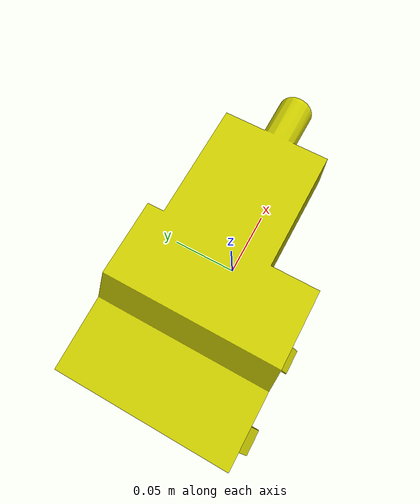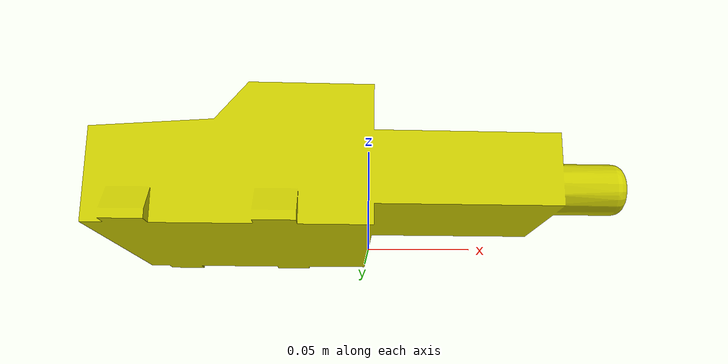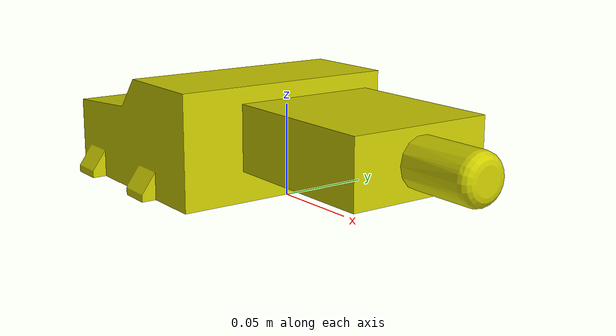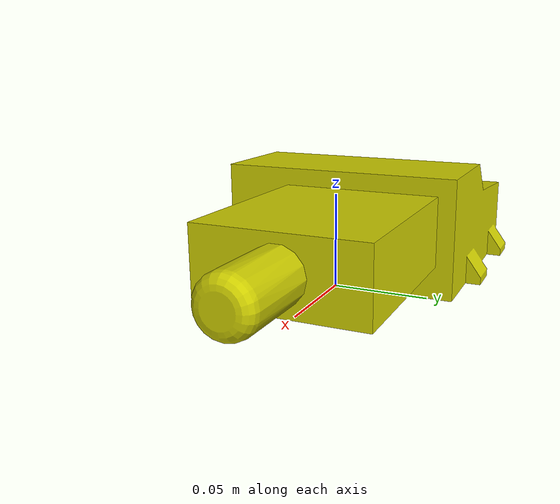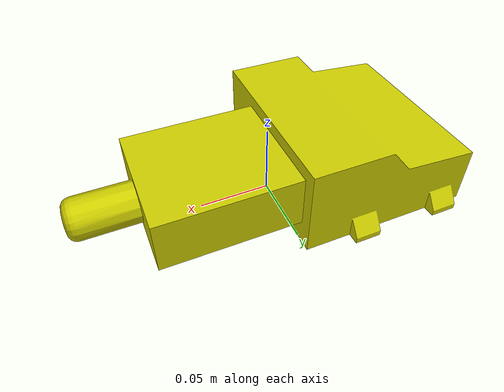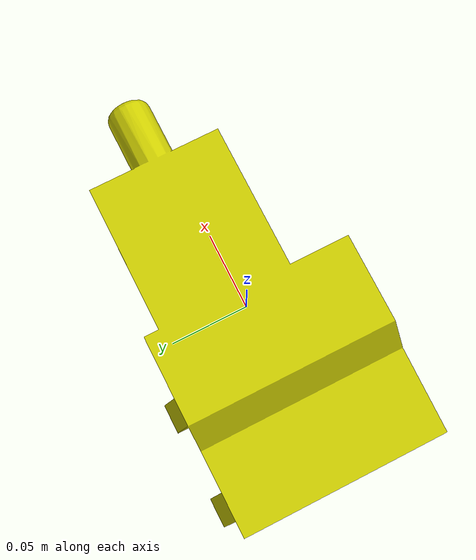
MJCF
<mujoco model="autec_receiver">
  <default>
    <default class="visual">
      <geom group="2" type="mesh" contype="0" conaffinity="0"/>
    </default>
    <default class="collision">
      <geom group="3" type="mesh"/>
    </default>
  </default>
  <asset>
    <material name="mtl_autec_receiver" specular="0.20000000000000004" shininess="1.0" rgba="0.80000000 0.80000000 0.00000000 1.0"/>
    <mesh file="autec_receiver.obj"/>
  </asset>
  <worldbody>
    <body name="autec_receiver">
      <geom material="mtl_autec_receiver" mesh="autec_receiver" class="visual"/>
      <geom mesh="autec_receiver" class="collision"/>
    </body>
  </worldbody>
</mujoco>
